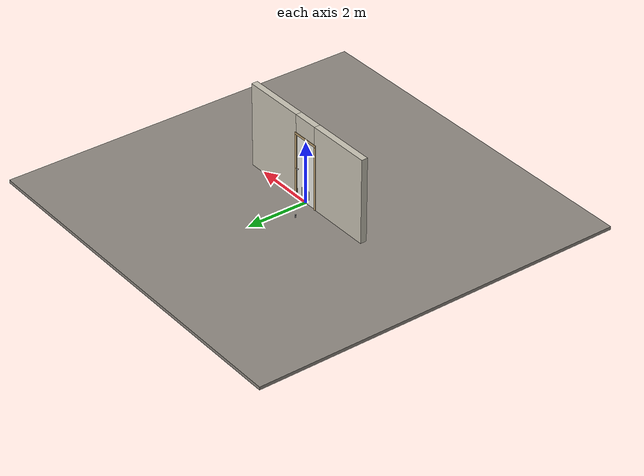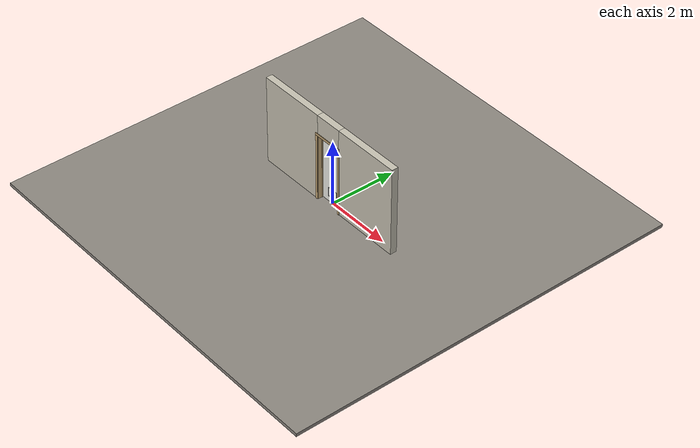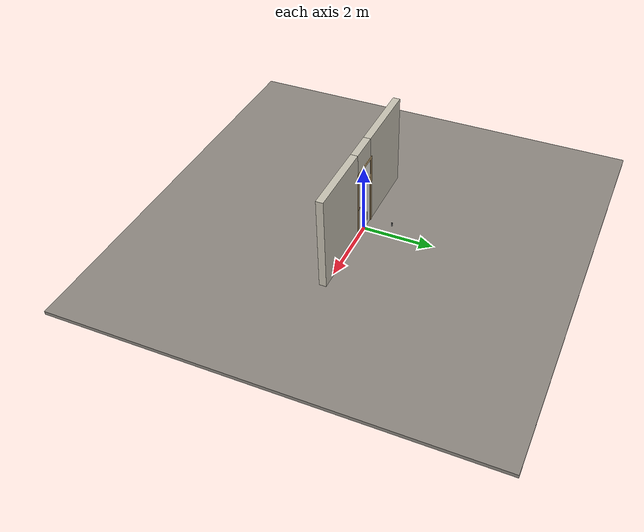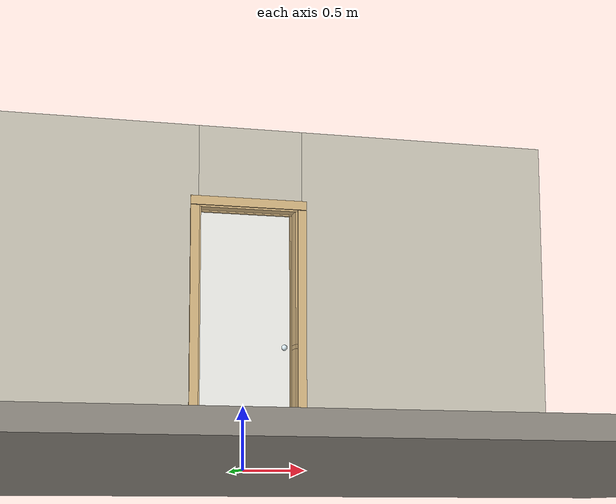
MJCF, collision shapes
<?xml version="1.0" ?>
<mujoco model="db0722_swing_single_full">
  <compiler angle="radian" meshdir="../../hardware" texturedir="../../textures" autolimits="true" inertiafromgeom="false"/>
  <option timestep="0.002" integrator="implicitfast" cone="elliptic" impratio="10" noslip_iterations="3">
    <flag multiccd="enable"/>
  </option>
  <size memory="16M"/>
  <default>
    <geom condim="4" solref="0.005 1" solimp="0.95 0.99 0.001"/>
    <joint solreflimit="0.005 1" solimplimit="0.95 0.99 0.001"/>
    <tendon solreflimit="0.005 1"/>
    <equality solref="0.002 1"/>
  </default>
  <visual>
    <headlight ambient="0.4 0.4 0.4" diffuse="0.7 0.7 0.7" specular="0.2 0.2 0.2"/>
    <quality shadowsize="4096"/>
    <map znear="0.01" zfar="60"/>
  </visual>
  <asset>
    <mesh name="hinge_e3fd49fe13" file="hinge_e3fd49fe13.obj"/>
    <mesh name="hinge_jamb_e47eb19c39" file="hinge_jamb_e47eb19c39.obj"/>
    <mesh name="knob_98a7916ed0" file="knob_98a7916ed0.obj"/>
    <material name="mat_floor" rgba="0.55 0.53 0.5 1" specular="0.2" shininess="0.15" reflectance="0"/>
    <material name="mat_wall" rgba="0.78 0.76 0.7 1" specular="0.2" shininess="0.1" reflectance="0"/>
    <material name="mat_leaf" rgba="0.93 0.93 0.91 1" specular="0.2" shininess="0.52" reflectance="0"/>
    <material name="mat_hinge" rgba="0.65 0.66 0.68 1" specular="0.74" shininess="0.5" reflectance="0.36"/>
    <material name="mat_op_glass_clear" rgba="0.85 0.92 0.95 0.25" specular="0.2" shininess="0.95" reflectance="0.1"/>
    <material name="mat_trim" rgba="0.85 0.66 0.3 1" specular="0.8" shininess="0.75" reflectance="0.4"/>
    <material name="mat_bolt" rgba="0.85 0.66 0.3 1" specular="0.8" shininess="0.75" reflectance="0.4"/>
    <material name="mat_frame" rgba="0.82 0.7 0.5 1" specular="0.2" shininess="0.45" reflectance="0"/>
    <material name="mat_vent" rgba="0.8 0.81 0.83 1" specular="0.8" shininess="0.6" reflectance="0.4"/>
    <material name="mat_bumper_stop" rgba="0.08 0.08 0.08 1" specular="0.2" shininess="0.1" reflectance="0"/>
    <material name="mat_stop_base" rgba="0.9 0.9 0.92 1" specular="0.8" shininess="0.9" reflectance="0.4"/>
    <texture name="skybox" type="skybox" builtin="gradient" rgb1="0.6 0.7 0.85" rgb2="0.9 0.92 0.95" width="256" height="256"/>
  </asset>
  <worldbody>
    <light name="sun" pos="1.5 -2.5 4" dir="-0.3 0.5 -0.8" directional="true" diffuse="0.8 0.8 0.8" specular="0.3 0.3 0.3" castshadow="true"/>
    <light name="fill" pos="-1.5 2.5 3" dir="0.3 -0.5 -0.7" directional="true" diffuse="0.35 0.35 0.4" castshadow="false"/>
    <camera name="robot_view" pos="0 -2.617687 1.734312" xyaxes="1 0 0 0 0.26963 0.962964" fovy="52"/>
    <camera name="far_view" pos="0 2.466687 1.734312" xyaxes="-1 0 0 0 -0.26963 0.962964" fovy="52"/>
    <camera name="iso" pos="1.932062 -2.210938 2.141063" xyaxes="0.741536 0.670913 0 -0.242917 0.268487 0.932151" fovy="46"/>
    <camera name="detail_handle" pos="0.5005 -0.8625 1.245" xyaxes="0.97561 0.219512 0 -0.070934 0.315262 0.94635" fovy="38"/>
    <geom name="floor" type="box" size="6 6 0.05" pos="0 0 -0.05" material="mat_floor" group="0" contype="1" conaffinity="1" friction="0.8 0.005 0.0001" density="2400"/>
    <geom name="wall_left" type="box" size="1.04825 0.1 1.35" pos="-1.45175 -0.0755 1.35" material="mat_wall" group="0" contype="1" conaffinity="1" friction="0.6 0.005 0.0001" density="800"/>
    <geom name="wall_right" type="box" size="1.03325 0.1 1.35" pos="1.46675 -0.0755 1.35" material="mat_wall" group="0" contype="1" conaffinity="1" friction="0.6 0.005 0.0001" density="800"/>
    <geom name="wall_header" type="box" size="0.4185 0.1 0.303" pos="0.015 -0.0755 2.397" material="mat_wall" group="0" contype="1" conaffinity="1" friction="0.6 0.005 0.0001" density="800"/>
    <geom name="hinge_0_jamb" type="mesh" mesh="hinge_jamb_e47eb19c39" pos="-0.3815 0.0245 0.259" quat="0 1 0 0" material="mat_hinge" group="1" contype="0" conaffinity="0" density="7850"/>
    <geom name="hinge_1_jamb" type="mesh" mesh="hinge_jamb_e47eb19c39" pos="-0.3815 0.0245 1.861" quat="0 1 0 0" material="mat_hinge" group="1" contype="0" conaffinity="0" density="7850"/>
    <geom name="jamb_hinge" type="box" size="0.0095 0.1 1.0225" pos="-0.394 -0.0755 1.0225" material="mat_frame" group="0" contype="1" conaffinity="1" friction="0.6 0.005 0.0001" density="400"/>
    <geom name="strike_965_wall_n" type="box" size="0.0245 0.083825 0.0167" pos="0.409 -0.091675 0.965" material="mat_frame" group="0" contype="1" conaffinity="1" friction="0.6 0.005 0.0001" density="400"/>
    <geom name="strike_965_wall_p" type="box" size="0.0245 0.008 0.0167" pos="0.409 0.01585 0.965" material="mat_frame" group="0" contype="1" conaffinity="1" friction="0.6 0.005 0.0001" density="400"/>
    <geom name="strike_965_ramp" type="box" size="0.0245 0.01649 0.0167" pos="0.413636 0.028673 0.965" quat="0.977148 0 0 -0.212558" material="mat_frame" group="0" contype="1" conaffinity="1" friction="0.12 0.005 0.0001" density="400"/>
    <geom name="strike_965_back" type="box" size="0.01615 0.00785 0.0167" pos="0.41735 0 0.965" material="mat_frame" group="0" contype="1" conaffinity="1" friction="0.6 0.005 0.0001" density="400"/>
    <geom name="jamb_strike_0" type="box" size="0.0245 0.1 0.47415" pos="0.409 -0.0755 0.47415" material="mat_frame" group="0" contype="1" conaffinity="1" friction="0.6 0.005 0.0001" density="400"/>
    <geom name="jamb_strike_1" type="box" size="0.0245 0.1 0.53165" pos="0.409 -0.0755 1.51335" material="mat_frame" group="0" contype="1" conaffinity="1" friction="0.6 0.005 0.0001" density="400"/>
    <geom name="jamb_head" type="box" size="0.4185 0.1 0.0095" pos="0.015 -0.0755 2.0545" material="mat_frame" group="0" contype="1" conaffinity="1" friction="0.6 0.005 0.0001" density="400"/>
    <geom name="head_stud" type="box" size="0.4185 0.1 0.015" pos="0.015 -0.0755 2.079" material="mat_wall" group="0" contype="1" conaffinity="1" friction="0.6 0.005 0.0001" density="500"/>
    <geom name="stop_hinge" type="box" size="0.0055 0.016 1.0225" pos="-0.379 -0.034 1.0225" material="mat_frame" group="0" contype="1" conaffinity="1" friction="0.6 0.005 0.0001" density="400"/>
    <geom name="stop_strike" type="box" size="0.0055 0.016 1.0225" pos="0.379 -0.034 1.0225" material="mat_frame" group="0" contype="1" conaffinity="1" friction="0.6 0.005 0.0001" density="400"/>
    <geom name="stop_head" type="box" size="0.3845 0.016 0.0055" pos="0 -0.034 2.0395" material="mat_frame" group="0" contype="1" conaffinity="1" friction="0.6 0.005 0.0001" density="400"/>
    <geom name="casing_l_n" type="box" size="0.035 0.008 1.032" pos="-0.4335 -0.1835 1.0225" material="mat_frame" group="2" contype="0" conaffinity="0" density="400"/>
    <geom name="casing_r_n" type="box" size="0.035 0.008 1.032" pos="0.4335 -0.1835 1.0225" material="mat_frame" group="2" contype="0" conaffinity="0" density="400"/>
    <geom name="casing_h_n" type="box" size="0.4685 0.008 0.035" pos="0 -0.1835 2.094" material="mat_frame" group="2" contype="0" conaffinity="0" density="400"/>
    <geom name="casing_l_p" type="box" size="0.035 0.008 1.032" pos="-0.4335 0.0325 1.0225" material="mat_frame" group="2" contype="0" conaffinity="0" density="400"/>
    <geom name="casing_r_p" type="box" size="0.035 0.008 1.032" pos="0.4335 0.0325 1.0225" material="mat_frame" group="2" contype="0" conaffinity="0" density="400"/>
    <geom name="casing_h_p" type="box" size="0.4685 0.008 0.035" pos="0 0.0325 2.094" material="mat_frame" group="2" contype="0" conaffinity="0" density="400"/>
    <geom name="door_stop_base" type="cylinder" size="0.022 0.003" pos="-0.3975 0.6722 0.003" material="mat_stop_base" group="0" contype="1" conaffinity="1" friction="0.6 0.005 0.0001" density="7850"/>
    <geom name="door_stop_post" type="cylinder" size="0.012 0.0245" pos="-0.3975 0.6722 0.0305" material="mat_stop_base" group="0" contype="1" conaffinity="1" friction="0.6 0.005 0.0001" density="7850"/>
    <geom name="door_stop_bumper" type="cylinder" size="0.022 0.02" pos="-0.3975 0.6722 0.075" material="mat_bumper_stop" group="0" contype="1" conaffinity="1" friction="0.6 0.005 0.0001" density="1100"/>
    <site name="approach_point" pos="0 -1.5 0" quat="1 0 0 0" size="0.05" rgba="0.2 0.9 0.2 0.5" group="4"/>
    <site name="goal_point" pos="0 1.5 0" quat="1 0 0 0" size="0.05" rgba="0.2 0.9 0.2 0.5" group="4"/>
    <site name="door_plane_center" pos="0 0 1.0225" quat="1 0 0 0" size="0.02" rgba="0.2 0.9 0.2 0.5" group="4"/>
    <body name="leaf" pos="-0.3845 0 0">
      <inertial pos="0.371203 0.000575 0.968042" mass="12.086079" quat="-0.497914 0.500159 0.499907 0.502011" diaginertia="0.59086847 4.410847518 4.998758881"/>
      <joint name="leaf_hinge" type="hinge" axis="0 0 1" pos="0.003 0.0245 0" limited="true" range="0 1.570796" damping="0.173726" frictionloss="0.552324" armature="0.02"/>
      <geom name="leaf_slab" type="box" size="0.381 0.0175 1.016" pos="0.384 0 1.025" material="mat_leaf" group="0" contype="1" conaffinity="1" friction="0.35 0.005 0.0001" density="1"/>
      <geom name="hinge_0" type="mesh" mesh="hinge_e3fd49fe13" pos="0.003 0.0245 0.259" quat="0 1 0 0" material="mat_hinge" group="1" contype="0" conaffinity="0" density="7850"/>
      <geom name="hinge_1" type="mesh" mesh="hinge_e3fd49fe13" pos="0.003 0.0245 1.861" quat="0 1 0 0" material="mat_hinge" group="1" contype="0" conaffinity="0" density="7850"/>
      <geom name="leaf_latch_bolt_faceplate" type="box" size="0.0006 0.01235 0.0267" pos="0.7644 0 0.965" material="mat_bolt" group="1" contype="0" conaffinity="0" density="8500"/>
      <geom name="louver_vent_stile_n_l" type="box" size="0.012 0.002 0.137" pos="0.222 -0.0195 0.314" material="mat_vent" group="2" contype="0" conaffinity="0" density="2700"/>
      <geom name="louver_vent_stile_n_r" type="box" size="0.012 0.002 0.137" pos="0.546 -0.0195 0.314" material="mat_vent" group="2" contype="0" conaffinity="0" density="2700"/>
      <geom name="louver_vent_rail_n_b" type="box" size="0.15 0.002 0.012" pos="0.384 -0.0195 0.177" material="mat_vent" group="2" contype="0" conaffinity="0" density="2700"/>
      <geom name="louver_vent_rail_n_t" type="box" size="0.15 0.002 0.012" pos="0.384 -0.0195 0.451" material="mat_vent" group="2" contype="0" conaffinity="0" density="2700"/>
      <geom name="louver_vent_stile_p_l" type="box" size="0.012 0.002 0.137" pos="0.222 0.0195 0.314" material="mat_vent" group="2" contype="0" conaffinity="0" density="2700"/>
      <geom name="louver_vent_stile_p_r" type="box" size="0.012 0.002 0.137" pos="0.546 0.0195 0.314" material="mat_vent" group="2" contype="0" conaffinity="0" density="2700"/>
      <geom name="louver_vent_rail_p_b" type="box" size="0.15 0.002 0.012" pos="0.384 0.0195 0.177" material="mat_vent" group="2" contype="0" conaffinity="0" density="2700"/>
      <geom name="louver_vent_rail_p_t" type="box" size="0.15 0.002 0.012" pos="0.384 0.0195 0.451" material="mat_vent" group="2" contype="0" conaffinity="0" density="2700"/>
      <geom name="louver_vent_slat_0" type="box" size="0.15 0.0015 0.015" pos="0.384 0 0.209833" quat="0.965926 -0.258819 0 0" material="mat_vent" group="2" contype="0" conaffinity="0" density="2700"/>
      <geom name="louver_vent_slat_1" type="box" size="0.15 0.0015 0.015" pos="0.384 0 0.2515" quat="0.965926 -0.258819 0 0" material="mat_vent" group="2" contype="0" conaffinity="0" density="2700"/>
      <geom name="louver_vent_slat_2" type="box" size="0.15 0.0015 0.015" pos="0.384 0 0.293167" quat="0.965926 -0.258819 0 0" material="mat_vent" group="2" contype="0" conaffinity="0" density="2700"/>
      <geom name="louver_vent_slat_3" type="box" size="0.15 0.0015 0.015" pos="0.384 0 0.334833" quat="0.965926 -0.258819 0 0" material="mat_vent" group="2" contype="0" conaffinity="0" density="2700"/>
      <geom name="louver_vent_slat_4" type="box" size="0.15 0.0015 0.015" pos="0.384 0 0.3765" quat="0.965926 -0.258819 0 0" material="mat_vent" group="2" contype="0" conaffinity="0" density="2700"/>
      <geom name="louver_vent_slat_5" type="box" size="0.15 0.0015 0.015" pos="0.384 0 0.418167" quat="0.965926 -0.258819 0 0" material="mat_vent" group="2" contype="0" conaffinity="0" density="2700"/>
      <site name="leaf_edge_mid" pos="0.765 0 1.016" quat="1 0 0 0" size="0.02" rgba="0.2 0.9 0.2 0.5" group="4"/>
      <body name="leaf_handle" pos="0.705 0 0.965">
        <inertial pos="0 0 0" mass="0.963808" quat="-0.5 0.5 -0.5 0.5" diaginertia="0.000215172 0.002993593 0.002993593"/>
        <joint name="leaf_handle_hinge" type="hinge" axis="0 -1 0" limited="true" range="0 0.8" damping="0.119588" frictionloss="0.032" stiffness="0.35" springref="-0.428571" armature="0.01"/>
        <geom name="leaf_handle_spindle" type="cylinder" size="0.006 0.0255" pos="0 0 0" quat="0.707107 -0.707107 0 0" material="mat_op_glass_clear" group="1" contype="0" conaffinity="0" density="7850"/>
        <geom name="leaf_handle_knob_n" type="mesh" mesh="knob_98a7916ed0" pos="0 -0.0175 0" quat="0.707107 0.707107 0 0" material="mat_op_glass_clear" group="1" contype="0" conaffinity="0" density="3000"/>
        <geom name="leaf_handle_knob_col_n" type="sphere" size="0.0234" pos="0 -0.0625 0" material="mat_op_glass_clear" group="0" contype="1" conaffinity="1" friction="0.9 0.01 0.0001" density="3000"/>
        <geom name="leaf_handle_knob_neck_n" type="cylinder" size="0.011 0.012" pos="0 -0.0295 0" quat="0.707107 -0.707107 0 0" material="mat_op_glass_clear" group="3" contype="1" conaffinity="1" rgba="0.8 0.3 0.3 0.25" friction="0.6 0.005 0.0001" density="3000"/>
        <geom name="leaf_handle_knob_p" type="mesh" mesh="knob_98a7916ed0" pos="0 0.0175 0" quat="-0.707107 0.707107 0 0" material="mat_op_glass_clear" group="1" contype="0" conaffinity="0" density="3000"/>
        <geom name="leaf_handle_knob_col_p" type="sphere" size="0.0234" pos="0 0.0625 0" material="mat_op_glass_clear" group="0" contype="1" conaffinity="1" friction="0.9 0.01 0.0001" density="3000"/>
        <geom name="leaf_handle_knob_neck_p" type="cylinder" size="0.011 0.012" pos="0 0.0295 0" quat="0.707107 -0.707107 0 0" material="mat_op_glass_clear" group="3" contype="1" conaffinity="1" rgba="0.8 0.3 0.3 0.25" friction="0.6 0.005 0.0001" density="3000"/>
        <site name="leaf_handle_grip_n" pos="0 -0.0625 0" quat="1 0 0 0" size="0.012" rgba="0.2 0.9 0.2 0.5" group="4"/>
        <site name="leaf_handle_grip_p" pos="0 0.0625 0" quat="1 0 0 0" size="0.012" rgba="0.2 0.9 0.2 0.5" group="4"/>
      </body>
      <body name="leaf_latch_bolt" pos="0.765 0 0.965">
        <inertial pos="-0.00865 0 0" mass="0.041419" quat="0.92388 -0.382683 0 0" diaginertia="0.000000798 0.000005598 0.000005598"/>
        <joint name="leaf_latch_bolt_slide" type="slide" axis="-1 0 0" limited="true" range="0 0.0127" damping="2" frictionloss="0.3" stiffness="300" springref="-0.008333" armature="0.1"/>
        <geom name="leaf_latch_bolt_capsule" type="capsule" size="0.00635 0.015" pos="-0.00865 0 0" quat="0.707107 0 0.707107 0" material="mat_bolt" group="0" contype="1" conaffinity="1" friction="0.2 0.005 0.0001" density="8500"/>
      </body>
    </body>
  </worldbody>
  <tendon>
    <fixed name="leaf_latch_bolt_coupling" limited="true" range="0 10">
      <joint joint="leaf_latch_bolt_slide" coef="1"/>
      <joint joint="leaf_handle_hinge" coef="-0.019538"/>
    </fixed>
  </tendon>
  <sensor>
    <jointpos name="leaf_hinge_pos" joint="leaf_hinge"/>
    <jointvel name="leaf_hinge_vel" joint="leaf_hinge"/>
    <jointpos name="leaf_handle_hinge_pos" joint="leaf_handle_hinge"/>
    <jointvel name="leaf_handle_hinge_vel" joint="leaf_handle_hinge"/>
    <jointpos name="leaf_latch_bolt_slide_pos" joint="leaf_latch_bolt_slide"/>
    <jointvel name="leaf_latch_bolt_slide_vel" joint="leaf_latch_bolt_slide"/>
  </sensor>
</mujoco>
